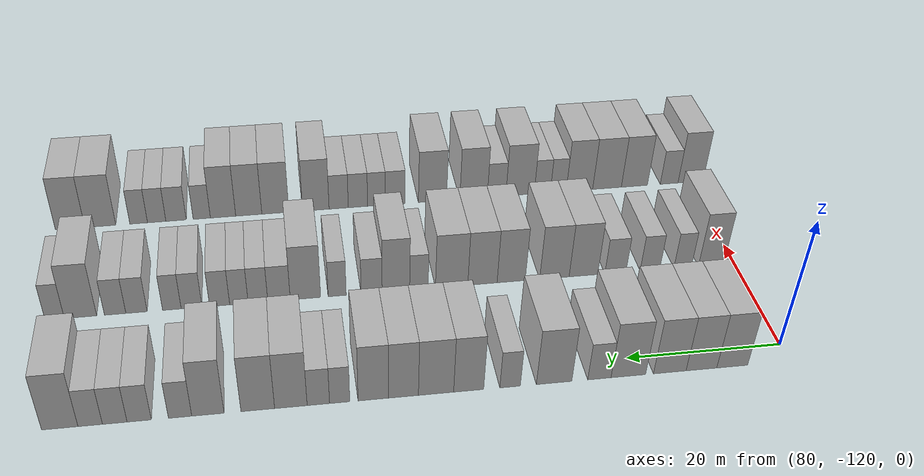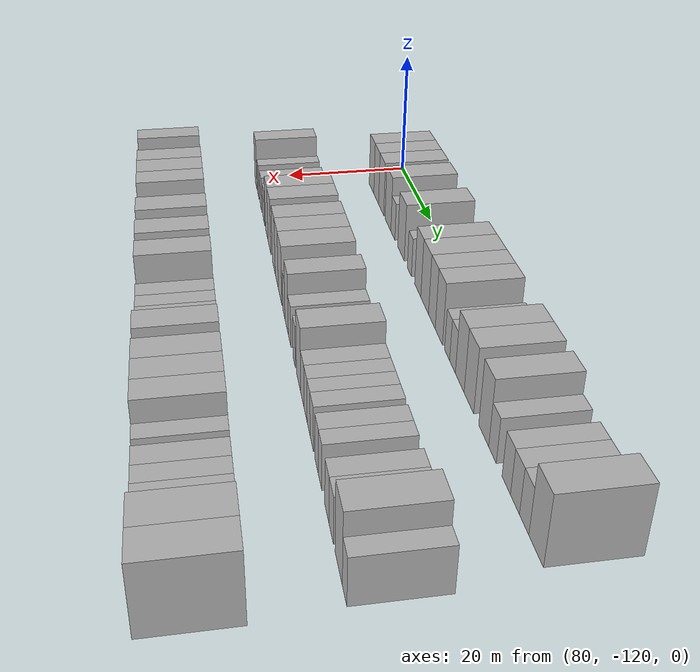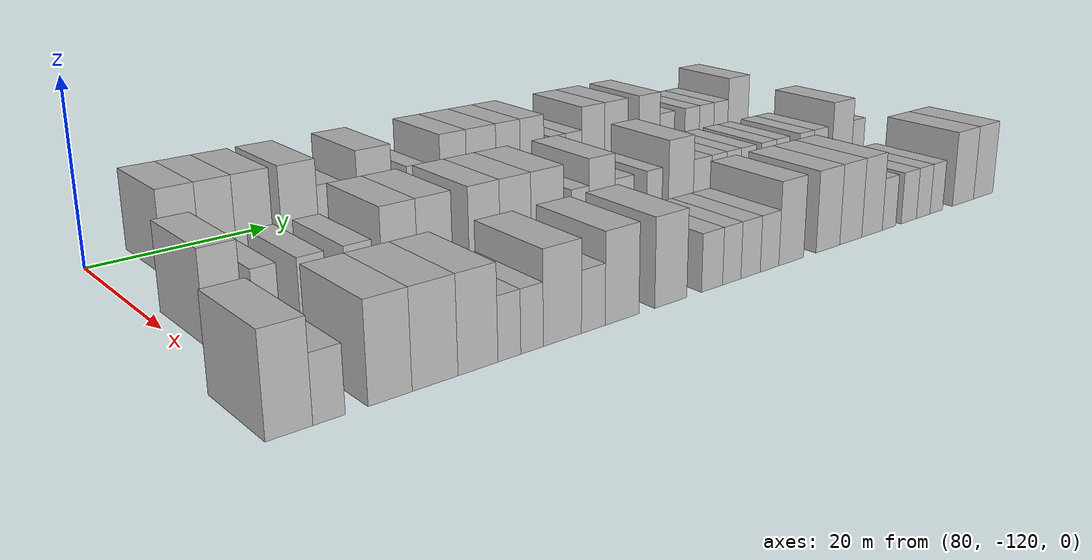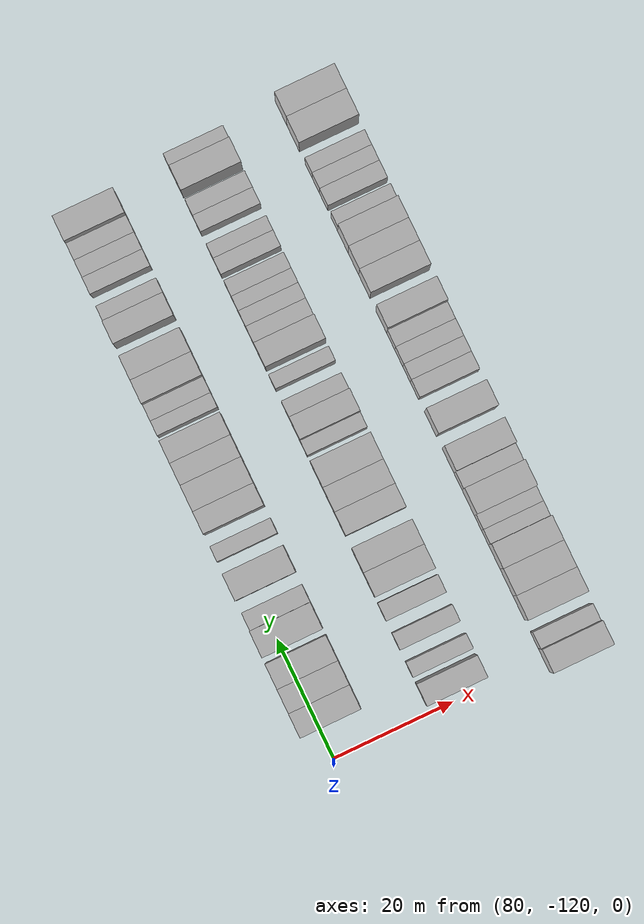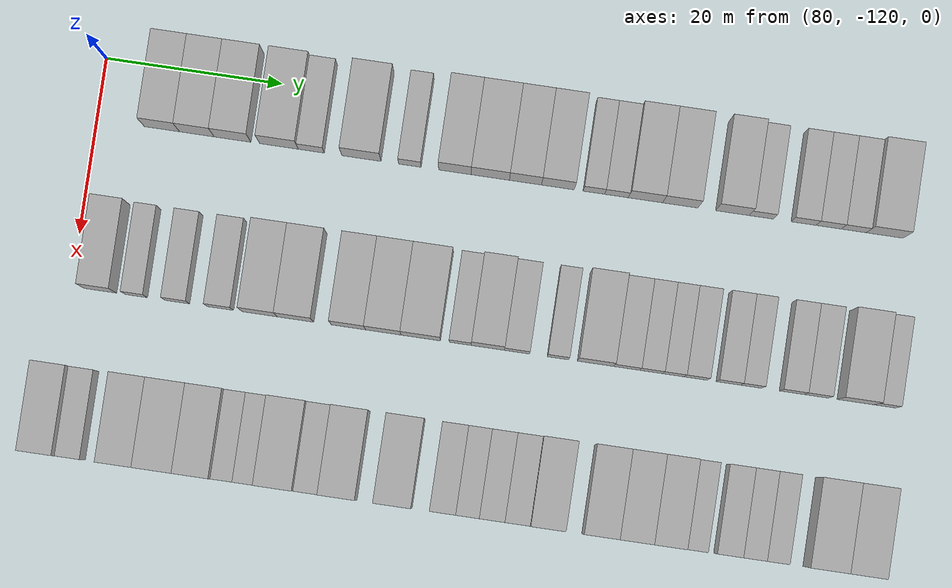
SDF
<sdf version="1.6">
 <world name="default">
  <model name="building_591">
   <static>1</static>
   <pose>82.0000 -112.6344 0 0.000000 0.000000 0.000000</pose>
   <link name="link">
    <pose>0 0 4.50 0 0 0</pose>
    <collision name="collision"><geometry><box><size>10.0000 3.9941 9.0000</size></box></geometry></collision>
    <visual name="visual">
     <cast_shadows>0</cast_shadows>
     <geometry><box><size>10.0000 3.9941 9.0000</size></box></geometry>
     <material>
      <script>
       <uri>model://HANNAS_wall/materials/scripts</uri>
       <uri>model://HANNAS_wall/materials/textures</uri>
       <name>vrc/HANNAS_wall</name>
      </script>
     </material>
    </visual>
   </link>
  </model>
  <model name="building_592">
   <static>1</static>
   <pose>82.0000 -108.6623 0 0.000000 0.000000 0.000000</pose>
   <link name="link">
    <pose>0 0 4.50 0 0 0</pose>
    <collision name="collision"><geometry><box><size>10.0000 3.9501 9.0000</size></box></geometry></collision>
    <visual name="visual">
     <cast_shadows>0</cast_shadows>
     <geometry><box><size>10.0000 3.9501 9.0000</size></box></geometry>
     <material>
      <script>
       <uri>model://HANNAS_wall/materials/scripts</uri>
       <uri>model://HANNAS_wall/materials/textures</uri>
       <name>vrc/HANNAS_wall</name>
      </script>
     </material>
    </visual>
   </link>
  </model>
  <model name="building_593">
   <static>1</static>
   <pose>82.0000 -104.6040 0 0.000000 0.000000 0.000000</pose>
   <link name="link">
    <pose>0 0 4.50 0 0 0</pose>
    <collision name="collision"><geometry><box><size>10.0000 4.1666 9.0000</size></box></geometry></collision>
    <visual name="visual">
     <cast_shadows>0</cast_shadows>
     <geometry><box><size>10.0000 4.1666 9.0000</size></box></geometry>
     <material>
      <script>
       <uri>model://HANNAS_wall/materials/scripts</uri>
       <uri>model://HANNAS_wall/materials/textures</uri>
       <name>vrc/HANNAS_wall</name>
      </script>
     </material>
    </visual>
   </link>
  </model>
  <model name="building_594">
   <static>1</static>
   <pose>82.0000 -99.3242 0 0.000000 0.000000 0.000000</pose>
   <link name="link">
    <pose>0 0 4.50 0 0 0</pose>
    <collision name="collision"><geometry><box><size>10.0000 4.3930 9.0000</size></box></geometry></collision>
    <visual name="visual">
     <cast_shadows>0</cast_shadows>
     <geometry><box><size>10.0000 4.3930 9.0000</size></box></geometry>
     <material>
      <script>
       <uri>model://HANNAS_wall/materials/scripts</uri>
       <uri>model://HANNAS_wall/materials/textures</uri>
       <name>vrc/HANNAS_wall</name>
      </script>
     </material>
    </visual>
   </link>
  </model>
  <model name="building_595">
   <static>1</static>
   <pose>82.0000 -95.6604 0 0.000000 0.000000 0.000000</pose>
   <link name="link">
    <pose>0 0 3.00 0 0 0</pose>
    <collision name="collision"><geometry><box><size>10.0000 2.9345 6.0000</size></box></geometry></collision>
    <visual name="visual">
     <cast_shadows>0</cast_shadows>
     <geometry><box><size>10.0000 2.9345 6.0000</size></box></geometry>
     <material>
      <script>
       <uri>model://HANNAS_wall/materials/scripts</uri>
       <uri>model://HANNAS_wall/materials/textures</uri>
       <name>vrc/HANNAS_wall</name>
      </script>
     </material>
    </visual>
   </link>
  </model>
  <model name="building_596">
   <static>1</static>
   <pose>82.0000 -89.9712 0 0.000000 0.000000 0.000000</pose>
   <link name="link">
    <pose>0 0 4.50 0 0 0</pose>
    <collision name="collision"><geometry><box><size>10.0000 4.4440 9.0000</size></box></geometry></collision>
    <visual name="visual">
     <cast_shadows>0</cast_shadows>
     <geometry><box><size>10.0000 4.4440 9.0000</size></box></geometry>
     <material>
      <script>
       <uri>model://HANNAS_wall/materials/scripts</uri>
       <uri>model://HANNAS_wall/materials/textures</uri>
       <name>vrc/HANNAS_wall</name>
      </script>
     </material>
    </visual>
   </link>
  </model>
  <model name="building_597">
   <static>1</static>
   <pose>82.0000 -84.4754 0 0.000000 0.000000 0.000000</pose>
   <link name="link">
    <pose>0 0 3.00 0 0 0</pose>
    <collision name="collision"><geometry><box><size>10.0000 2.5475 6.0000</size></box></geometry></collision>
    <visual name="visual">
     <cast_shadows>0</cast_shadows>
     <geometry><box><size>10.0000 2.5475 6.0000</size></box></geometry>
     <material>
      <script>
       <uri>model://HANNAS_wall/materials/scripts</uri>
       <uri>model://HANNAS_wall/materials/textures</uri>
       <name>vrc/HANNAS_wall</name>
      </script>
     </material>
    </visual>
   </link>
  </model>
  <model name="building_598">
   <static>1</static>
   <pose>82.0000 -79.3504 0 0.000000 0.000000 0.000000</pose>
   <link name="link">
    <pose>0 0 4.50 0 0 0</pose>
    <collision name="collision"><geometry><box><size>10.0000 3.7024 9.0000</size></box></geometry></collision>
    <visual name="visual">
     <cast_shadows>0</cast_shadows>
     <geometry><box><size>10.0000 3.7024 9.0000</size></box></geometry>
     <material>
      <script>
       <uri>model://HANNAS_wall/materials/scripts</uri>
       <uri>model://HANNAS_wall/materials/textures</uri>
       <name>vrc/HANNAS_wall</name>
      </script>
     </material>
    </visual>
   </link>
  </model>
  <model name="building_599">
   <static>1</static>
   <pose>82.0000 -75.3377 0 0.000000 0.000000 0.000000</pose>
   <link name="link">
    <pose>0 0 4.50 0 0 0</pose>
    <collision name="collision"><geometry><box><size>10.0000 4.3231 9.0000</size></box></geometry></collision>
    <visual name="visual">
     <cast_shadows>0</cast_shadows>
     <geometry><box><size>10.0000 4.3231 9.0000</size></box></geometry>
     <material>
      <script>
       <uri>model://HANNAS_wall/materials/scripts</uri>
       <uri>model://HANNAS_wall/materials/textures</uri>
       <name>vrc/HANNAS_wall</name>
      </script>
     </material>
    </visual>
   </link>
  </model>
  <model name="building_600">
   <static>1</static>
   <pose>82.0000 -71.3604 0 0.000000 0.000000 0.000000</pose>
   <link name="link">
    <pose>0 0 4.50 0 0 0</pose>
    <collision name="collision"><geometry><box><size>10.0000 3.6313 9.0000</size></box></geometry></collision>
    <visual name="visual">
     <cast_shadows>0</cast_shadows>
     <geometry><box><size>10.0000 3.6313 9.0000</size></box></geometry>
     <material>
      <script>
       <uri>model://HANNAS_wall/materials/scripts</uri>
       <uri>model://HANNAS_wall/materials/textures</uri>
       <name>vrc/HANNAS_wall</name>
      </script>
     </material>
    </visual>
   </link>
  </model>
  <model name="building_601">
   <static>1</static>
   <pose>82.0000 -67.6889 0 0.000000 0.000000 0.000000</pose>
   <link name="link">
    <pose>0 0 4.50 0 0 0</pose>
    <collision name="collision"><geometry><box><size>10.0000 3.7117 9.0000</size></box></geometry></collision>
    <visual name="visual">
     <cast_shadows>0</cast_shadows>
     <geometry><box><size>10.0000 3.7117 9.0000</size></box></geometry>
     <material>
      <script>
       <uri>model://HANNAS_wall/materials/scripts</uri>
       <uri>model://HANNAS_wall/materials/textures</uri>
       <name>vrc/HANNAS_wall</name>
      </script>
     </material>
    </visual>
   </link>
  </model>
  <model name="building_602">
   <static>1</static>
   <pose>82.0000 -63.6127 0 0.000000 0.000000 0.000000</pose>
   <link name="link">
    <pose>0 0 3.00 0 0 0</pose>
    <collision name="collision"><geometry><box><size>10.0000 2.4409 6.0000</size></box></geometry></collision>
    <visual name="visual">
     <cast_shadows>0</cast_shadows>
     <geometry><box><size>10.0000 2.4409 6.0000</size></box></geometry>
     <material>
      <script>
       <uri>model://HANNAS_wall/materials/scripts</uri>
       <uri>model://HANNAS_wall/materials/textures</uri>
       <name>vrc/HANNAS_wall</name>
      </script>
     </material>
    </visual>
   </link>
  </model>
  <model name="building_603">
   <static>1</static>
   <pose>82.0000 -61.0438 0 0.000000 0.000000 0.000000</pose>
   <link name="link">
    <pose>0 0 3.00 0 0 0</pose>
    <collision name="collision"><geometry><box><size>10.0000 2.6968 6.0000</size></box></geometry></collision>
    <visual name="visual">
     <cast_shadows>0</cast_shadows>
     <geometry><box><size>10.0000 2.6968 6.0000</size></box></geometry>
     <material>
      <script>
       <uri>model://HANNAS_wall/materials/scripts</uri>
       <uri>model://HANNAS_wall/materials/textures</uri>
       <name>vrc/HANNAS_wall</name>
      </script>
     </material>
    </visual>
   </link>
  </model>
  <model name="building_604">
   <static>1</static>
   <pose>82.0000 -57.7512 0 0.000000 0.000000 0.000000</pose>
   <link name="link">
    <pose>0 0 4.50 0 0 0</pose>
    <collision name="collision"><geometry><box><size>10.0000 3.8884 9.0000</size></box></geometry></collision>
    <visual name="visual">
     <cast_shadows>0</cast_shadows>
     <geometry><box><size>10.0000 3.8884 9.0000</size></box></geometry>
     <material>
      <script>
       <uri>model://HANNAS_wall/materials/scripts</uri>
       <uri>model://HANNAS_wall/materials/textures</uri>
       <name>vrc/HANNAS_wall</name>
      </script>
     </material>
    </visual>
   </link>
  </model>
  <model name="building_605">
   <static>1</static>
   <pose>82.0000 -53.8021 0 0.000000 0.000000 0.000000</pose>
   <link name="link">
    <pose>0 0 4.50 0 0 0</pose>
    <collision name="collision"><geometry><box><size>10.0000 4.0098 9.0000</size></box></geometry></collision>
    <visual name="visual">
     <cast_shadows>0</cast_shadows>
     <geometry><box><size>10.0000 4.0098 9.0000</size></box></geometry>
     <material>
      <script>
       <uri>model://HANNAS_wall/materials/scripts</uri>
       <uri>model://HANNAS_wall/materials/textures</uri>
       <name>vrc/HANNAS_wall</name>
      </script>
     </material>
    </visual>
   </link>
  </model>
  <model name="building_606">
   <static>1</static>
   <pose>82.0000 -47.8927 0 0.000000 0.000000 0.000000</pose>
   <link name="link">
    <pose>0 0 4.50 0 0 0</pose>
    <collision name="collision"><geometry><box><size>10.0000 3.8091 9.0000</size></box></geometry></collision>
    <visual name="visual">
     <cast_shadows>0</cast_shadows>
     <geometry><box><size>10.0000 3.8091 9.0000</size></box></geometry>
     <material>
      <script>
       <uri>model://HANNAS_wall/materials/scripts</uri>
       <uri>model://HANNAS_wall/materials/textures</uri>
       <name>vrc/HANNAS_wall</name>
      </script>
     </material>
    </visual>
   </link>
  </model>
  <model name="building_607">
   <static>1</static>
   <pose>82.0000 -44.6165 0 0.000000 0.000000 0.000000</pose>
   <link name="link">
    <pose>0 0 3.00 0 0 0</pose>
    <collision name="collision"><geometry><box><size>10.0000 2.7433 6.0000</size></box></geometry></collision>
    <visual name="visual">
     <cast_shadows>0</cast_shadows>
     <geometry><box><size>10.0000 2.7433 6.0000</size></box></geometry>
     <material>
      <script>
       <uri>model://HANNAS_wall/materials/scripts</uri>
       <uri>model://HANNAS_wall/materials/textures</uri>
       <name>vrc/HANNAS_wall</name>
      </script>
     </material>
    </visual>
   </link>
  </model>
  <model name="building_608">
   <static>1</static>
   <pose>82.0000 -39.8314 0 0.000000 0.000000 0.000000</pose>
   <link name="link">
    <pose>0 0 3.00 0 0 0</pose>
    <collision name="collision"><geometry><box><size>10.0000 2.8268 6.0000</size></box></geometry></collision>
    <visual name="visual">
     <cast_shadows>0</cast_shadows>
     <geometry><box><size>10.0000 2.8268 6.0000</size></box></geometry>
     <material>
      <script>
       <uri>model://HANNAS_wall/materials/scripts</uri>
       <uri>model://HANNAS_wall/materials/textures</uri>
       <name>vrc/HANNAS_wall</name>
      </script>
     </material>
    </visual>
   </link>
  </model>
  <model name="building_609">
   <static>1</static>
   <pose>82.0000 -36.9887 0 0.000000 0.000000 0.000000</pose>
   <link name="link">
    <pose>0 0 3.00 0 0 0</pose>
    <collision name="collision"><geometry><box><size>10.0000 2.8586 6.0000</size></box></geometry></collision>
    <visual name="visual">
     <cast_shadows>0</cast_shadows>
     <geometry><box><size>10.0000 2.8586 6.0000</size></box></geometry>
     <material>
      <script>
       <uri>model://HANNAS_wall/materials/scripts</uri>
       <uri>model://HANNAS_wall/materials/textures</uri>
       <name>vrc/HANNAS_wall</name>
      </script>
     </material>
    </visual>
   </link>
  </model>
  <model name="building_610">
   <static>1</static>
   <pose>82.0000 -34.1430 0 0.000000 0.000000 0.000000</pose>
   <link name="link">
    <pose>0 0 3.00 0 0 0</pose>
    <collision name="collision"><geometry><box><size>10.0000 2.8327 6.0000</size></box></geometry></collision>
    <visual name="visual">
     <cast_shadows>0</cast_shadows>
     <geometry><box><size>10.0000 2.8327 6.0000</size></box></geometry>
     <material>
      <script>
       <uri>model://HANNAS_wall/materials/scripts</uri>
       <uri>model://HANNAS_wall/materials/textures</uri>
       <name>vrc/HANNAS_wall</name>
      </script>
     </material>
    </visual>
   </link>
  </model>
  <model name="building_611">
   <static>1</static>
   <pose>82.0000 -30.6301 0 0.000000 0.000000 0.000000</pose>
   <link name="link">
    <pose>0 0 4.50 0 0 0</pose>
    <collision name="collision"><geometry><box><size>10.0000 4.1931 9.0000</size></box></geometry></collision>
    <visual name="visual">
     <cast_shadows>0</cast_shadows>
     <geometry><box><size>10.0000 4.1931 9.0000</size></box></geometry>
     <material>
      <script>
       <uri>model://HANNAS_wall/materials/scripts</uri>
       <uri>model://HANNAS_wall/materials/textures</uri>
       <name>vrc/HANNAS_wall</name>
      </script>
     </material>
    </visual>
   </link>
  </model>
  <model name="building_768">
   <static>1</static>
   <pose>101.0000 -116.6891 0 0.000000 0.000000 0.000000</pose>
   <link name="link">
    <pose>0 0 4.50 0 0 0</pose>
    <collision name="collision"><geometry><box><size>10.0000 3.6314 9.0000</size></box></geometry></collision>
    <visual name="visual">
     <cast_shadows>0</cast_shadows>
     <geometry><box><size>10.0000 3.6314 9.0000</size></box></geometry>
     <material>
      <script>
       <uri>model://HANNAS_wall/materials/scripts</uri>
       <uri>model://HANNAS_wall/materials/textures</uri>
       <name>vrc/HANNAS_wall</name>
      </script>
     </material>
    </visual>
   </link>
  </model>
  <model name="building_769">
   <static>1</static>
   <pose>101.0000 -112.6249 0 0.000000 0.000000 0.000000</pose>
   <link name="link">
    <pose>0 0 3.00 0 0 0</pose>
    <collision name="collision"><geometry><box><size>10.0000 2.4971 6.0000</size></box></geometry></collision>
    <visual name="visual">
     <cast_shadows>0</cast_shadows>
     <geometry><box><size>10.0000 2.4971 6.0000</size></box></geometry>
     <material>
      <script>
       <uri>model://HANNAS_wall/materials/scripts</uri>
       <uri>model://HANNAS_wall/materials/textures</uri>
       <name>vrc/HANNAS_wall</name>
      </script>
     </material>
    </visual>
   </link>
  </model>
  <model name="building_770">
   <static>1</static>
   <pose>101.0000 -107.9869 0 0.000000 0.000000 0.000000</pose>
   <link name="link">
    <pose>0 0 3.00 0 0 0</pose>
    <collision name="collision"><geometry><box><size>10.0000 2.7790 6.0000</size></box></geometry></collision>
    <visual name="visual">
     <cast_shadows>0</cast_shadows>
     <geometry><box><size>10.0000 2.7790 6.0000</size></box></geometry>
     <material>
      <script>
       <uri>model://HANNAS_wall/materials/scripts</uri>
       <uri>model://HANNAS_wall/materials/textures</uri>
       <name>vrc/HANNAS_wall</name>
      </script>
     </material>
    </visual>
   </link>
  </model>
  <model name="building_771">
   <static>1</static>
   <pose>101.0000 -103.1115 0 0.000000 0.000000 0.000000</pose>
   <link name="link">
    <pose>0 0 3.00 0 0 0</pose>
    <collision name="collision"><geometry><box><size>10.0000 2.9717 6.0000</size></box></geometry></collision>
    <visual name="visual">
     <cast_shadows>0</cast_shadows>
     <geometry><box><size>10.0000 2.9717 6.0000</size></box></geometry>
     <material>
      <script>
       <uri>model://HANNAS_wall/materials/scripts</uri>
       <uri>model://HANNAS_wall/materials/textures</uri>
       <name>vrc/HANNAS_wall</name>
      </script>
     </material>
    </visual>
   </link>
  </model>
  <model name="building_772">
   <static>1</static>
   <pose>101.0000 -98.6265 0 0.000000 0.000000 0.000000</pose>
   <link name="link">
    <pose>0 0 4.50 0 0 0</pose>
    <collision name="collision"><geometry><box><size>10.0000 3.9984 9.0000</size></box></geometry></collision>
    <visual name="visual">
     <cast_shadows>0</cast_shadows>
     <geometry><box><size>10.0000 3.9984 9.0000</size></box></geometry>
     <material>
      <script>
       <uri>model://HANNAS_wall/materials/scripts</uri>
       <uri>model://HANNAS_wall/materials/textures</uri>
       <name>vrc/HANNAS_wall</name>
      </script>
     </material>
    </visual>
   </link>
  </model>
  <model name="building_773">
   <static>1</static>
   <pose>101.0000 -94.5780 0 0.000000 0.000000 0.000000</pose>
   <link name="link">
    <pose>0 0 4.50 0 0 0</pose>
    <collision name="collision"><geometry><box><size>10.0000 4.0985 9.0000</size></box></geometry></collision>
    <visual name="visual">
     <cast_shadows>0</cast_shadows>
     <geometry><box><size>10.0000 4.0985 9.0000</size></box></geometry>
     <material>
      <script>
       <uri>model://HANNAS_wall/materials/scripts</uri>
       <uri>model://HANNAS_wall/materials/textures</uri>
       <name>vrc/HANNAS_wall</name>
      </script>
     </material>
    </visual>
   </link>
  </model>
  <model name="building_774">
   <static>1</static>
   <pose>101.0000 -88.5860 0 0.000000 0.000000 0.000000</pose>
   <link name="link">
    <pose>0 0 4.50 0 0 0</pose>
    <collision name="collision"><geometry><box><size>10.0000 3.8856 9.0000</size></box></geometry></collision>
    <visual name="visual">
     <cast_shadows>0</cast_shadows>
     <geometry><box><size>10.0000 3.8856 9.0000</size></box></geometry>
     <material>
      <script>
       <uri>model://HANNAS_wall/materials/scripts</uri>
       <uri>model://HANNAS_wall/materials/textures</uri>
       <name>vrc/HANNAS_wall</name>
      </script>
     </material>
    </visual>
   </link>
  </model>
  <model name="building_775">
   <static>1</static>
   <pose>101.0000 -84.6299 0 0.000000 0.000000 0.000000</pose>
   <link name="link">
    <pose>0 0 4.50 0 0 0</pose>
    <collision name="collision"><geometry><box><size>10.0000 4.0265 9.0000</size></box></geometry></collision>
    <visual name="visual">
     <cast_shadows>0</cast_shadows>
     <geometry><box><size>10.0000 4.0265 9.0000</size></box></geometry>
     <material>
      <script>
       <uri>model://HANNAS_wall/materials/scripts</uri>
       <uri>model://HANNAS_wall/materials/textures</uri>
       <name>vrc/HANNAS_wall</name>
      </script>
     </material>
    </visual>
   </link>
  </model>
  <model name="building_776">
   <static>1</static>
   <pose>101.0000 -80.4047 0 0.000000 0.000000 0.000000</pose>
   <link name="link">
    <pose>0 0 4.50 0 0 0</pose>
    <collision name="collision"><geometry><box><size>10.0000 4.4237 9.0000</size></box></geometry></collision>
    <visual name="visual">
     <cast_shadows>0</cast_shadows>
     <geometry><box><size>10.0000 4.4237 9.0000</size></box></geometry>
     <material>
      <script>
       <uri>model://HANNAS_wall/materials/scripts</uri>
       <uri>model://HANNAS_wall/materials/textures</uri>
       <name>vrc/HANNAS_wall</name>
      </script>
     </material>
    </visual>
   </link>
  </model>
  <model name="building_777">
   <static>1</static>
   <pose>101.0000 -75.9399 0 0.000000 0.000000 0.000000</pose>
   <link name="link">
    <pose>0 0 3.00 0 0 0</pose>
    <collision name="collision"><geometry><box><size>10.0000 2.5059 6.0000</size></box></geometry></collision>
    <visual name="visual">
     <cast_shadows>0</cast_shadows>
     <geometry><box><size>10.0000 2.5059 6.0000</size></box></geometry>
     <material>
      <script>
       <uri>model://HANNAS_wall/materials/scripts</uri>
       <uri>model://HANNAS_wall/materials/textures</uri>
       <name>vrc/HANNAS_wall</name>
      </script>
     </material>
    </visual>
   </link>
  </model>
  <model name="building_778">
   <static>1</static>
   <pose>101.0000 -72.8253 0 0.000000 0.000000 0.000000</pose>
   <link name="link">
    <pose>0 0 4.50 0 0 0</pose>
    <collision name="collision"><geometry><box><size>10.0000 3.7233 9.0000</size></box></geometry></collision>
    <visual name="visual">
     <cast_shadows>0</cast_shadows>
     <geometry><box><size>10.0000 3.7233 9.0000</size></box></geometry>
     <material>
      <script>
       <uri>model://HANNAS_wall/materials/scripts</uri>
       <uri>model://HANNAS_wall/materials/textures</uri>
       <name>vrc/HANNAS_wall</name>
      </script>
     </material>
    </visual>
   </link>
  </model>
  <model name="building_779">
   <static>1</static>
   <pose>101.0000 -69.5464 0 0.000000 0.000000 0.000000</pose>
   <link name="link">
    <pose>0 0 3.00 0 0 0</pose>
    <collision name="collision"><geometry><box><size>10.0000 2.8346 6.0000</size></box></geometry></collision>
    <visual name="visual">
     <cast_shadows>0</cast_shadows>
     <geometry><box><size>10.0000 2.8346 6.0000</size></box></geometry>
     <material>
      <script>
       <uri>model://HANNAS_wall/materials/scripts</uri>
       <uri>model://HANNAS_wall/materials/textures</uri>
       <name>vrc/HANNAS_wall</name>
      </script>
     </material>
    </visual>
   </link>
  </model>
  <model name="building_780">
   <static>1</static>
   <pose>101.0000 -64.9202 0 0.000000 0.000000 0.000000</pose>
   <link name="link">
    <pose>0 0 3.00 0 0 0</pose>
    <collision name="collision"><geometry><box><size>10.0000 2.4177 6.0000</size></box></geometry></collision>
    <visual name="visual">
     <cast_shadows>0</cast_shadows>
     <geometry><box><size>10.0000 2.4177 6.0000</size></box></geometry>
     <material>
      <script>
       <uri>model://HANNAS_wall/materials/scripts</uri>
       <uri>model://HANNAS_wall/materials/textures</uri>
       <name>vrc/HANNAS_wall</name>
      </script>
     </material>
    </visual>
   </link>
  </model>
  <model name="building_781">
   <static>1</static>
   <pose>101.0000 -60.6857 0 0.000000 0.000000 0.000000</pose>
   <link name="link">
    <pose>0 0 4.50 0 0 0</pose>
    <collision name="collision"><geometry><box><size>10.0000 4.0514 9.0000</size></box></geometry></collision>
    <visual name="visual">
     <cast_shadows>0</cast_shadows>
     <geometry><box><size>10.0000 4.0514 9.0000</size></box></geometry>
     <material>
      <script>
       <uri>model://HANNAS_wall/materials/scripts</uri>
       <uri>model://HANNAS_wall/materials/textures</uri>
       <name>vrc/HANNAS_wall</name>
      </script>
     </material>
    </visual>
   </link>
  </model>
  <model name="building_782">
   <static>1</static>
   <pose>101.0000 -57.1712 0 0.000000 0.000000 0.000000</pose>
   <link name="link">
    <pose>0 0 3.00 0 0 0</pose>
    <collision name="collision"><geometry><box><size>10.0000 2.9776 6.0000</size></box></geometry></collision>
    <visual name="visual">
     <cast_shadows>0</cast_shadows>
     <geometry><box><size>10.0000 2.9776 6.0000</size></box></geometry>
     <material>
      <script>
       <uri>model://HANNAS_wall/materials/scripts</uri>
       <uri>model://HANNAS_wall/materials/textures</uri>
       <name>vrc/HANNAS_wall</name>
      </script>
     </material>
    </visual>
   </link>
  </model>
  <model name="building_783">
   <static>1</static>
   <pose>101.0000 -54.3871 0 0.000000 0.000000 0.000000</pose>
   <link name="link">
    <pose>0 0 3.00 0 0 0</pose>
    <collision name="collision"><geometry><box><size>10.0000 2.5906 6.0000</size></box></geometry></collision>
    <visual name="visual">
     <cast_shadows>0</cast_shadows>
     <geometry><box><size>10.0000 2.5906 6.0000</size></box></geometry>
     <material>
      <script>
       <uri>model://HANNAS_wall/materials/scripts</uri>
       <uri>model://HANNAS_wall/materials/textures</uri>
       <name>vrc/HANNAS_wall</name>
      </script>
     </material>
    </visual>
   </link>
  </model>
  <model name="building_784">
   <static>1</static>
   <pose>101.0000 -51.8714 0 0.000000 0.000000 0.000000</pose>
   <link name="link">
    <pose>0 0 3.00 0 0 0</pose>
    <collision name="collision"><geometry><box><size>10.0000 2.4406 6.0000</size></box></geometry></collision>
    <visual name="visual">
     <cast_shadows>0</cast_shadows>
     <geometry><box><size>10.0000 2.4406 6.0000</size></box></geometry>
     <material>
      <script>
       <uri>model://HANNAS_wall/materials/scripts</uri>
       <uri>model://HANNAS_wall/materials/textures</uri>
       <name>vrc/HANNAS_wall</name>
      </script>
     </material>
    </visual>
   </link>
  </model>
  <model name="building_785">
   <static>1</static>
   <pose>101.0000 -49.3332 0 0.000000 0.000000 0.000000</pose>
   <link name="link">
    <pose>0 0 3.00 0 0 0</pose>
    <collision name="collision"><geometry><box><size>10.0000 2.6359 6.0000</size></box></geometry></collision>
    <visual name="visual">
     <cast_shadows>0</cast_shadows>
     <geometry><box><size>10.0000 2.6359 6.0000</size></box></geometry>
     <material>
      <script>
       <uri>model://HANNAS_wall/materials/scripts</uri>
       <uri>model://HANNAS_wall/materials/textures</uri>
       <name>vrc/HANNAS_wall</name>
      </script>
     </material>
    </visual>
   </link>
  </model>
  <model name="building_786">
   <static>1</static>
   <pose>101.0000 -45.6547 0 0.000000 0.000000 0.000000</pose>
   <link name="link">
    <pose>0 0 3.00 0 0 0</pose>
    <collision name="collision"><geometry><box><size>10.0000 2.7209 6.0000</size></box></geometry></collision>
    <visual name="visual">
     <cast_shadows>0</cast_shadows>
     <geometry><box><size>10.0000 2.7209 6.0000</size></box></geometry>
     <material>
      <script>
       <uri>model://HANNAS_wall/materials/scripts</uri>
       <uri>model://HANNAS_wall/materials/textures</uri>
       <name>vrc/HANNAS_wall</name>
      </script>
     </material>
    </visual>
   </link>
  </model>
  <model name="building_787">
   <static>1</static>
   <pose>101.0000 -43.0825 0 0.000000 0.000000 0.000000</pose>
   <link name="link">
    <pose>0 0 3.00 0 0 0</pose>
    <collision name="collision"><geometry><box><size>10.0000 2.4235 6.0000</size></box></geometry></collision>
    <visual name="visual">
     <cast_shadows>0</cast_shadows>
     <geometry><box><size>10.0000 2.4235 6.0000</size></box></geometry>
     <material>
      <script>
       <uri>model://HANNAS_wall/materials/scripts</uri>
       <uri>model://HANNAS_wall/materials/textures</uri>
       <name>vrc/HANNAS_wall</name>
      </script>
     </material>
    </visual>
   </link>
  </model>
  <model name="building_788">
   <static>1</static>
   <pose>101.0000 -38.4903 0 0.000000 0.000000 0.000000</pose>
   <link name="link">
    <pose>0 0 3.00 0 0 0</pose>
    <collision name="collision"><geometry><box><size>10.0000 2.7611 6.0000</size></box></geometry></collision>
    <visual name="visual">
     <cast_shadows>0</cast_shadows>
     <geometry><box><size>10.0000 2.7611 6.0000</size></box></geometry>
     <material>
      <script>
       <uri>model://HANNAS_wall/materials/scripts</uri>
       <uri>model://HANNAS_wall/materials/textures</uri>
       <name>vrc/HANNAS_wall</name>
      </script>
     </material>
    </visual>
   </link>
  </model>
  <model name="building_789">
   <static>1</static>
   <pose>101.0000 -35.7264 0 0.000000 0.000000 0.000000</pose>
   <link name="link">
    <pose>0 0 3.00 0 0 0</pose>
    <collision name="collision"><geometry><box><size>10.0000 2.7666 6.0000</size></box></geometry></collision>
    <visual name="visual">
     <cast_shadows>0</cast_shadows>
     <geometry><box><size>10.0000 2.7666 6.0000</size></box></geometry>
     <material>
      <script>
       <uri>model://HANNAS_wall/materials/scripts</uri>
       <uri>model://HANNAS_wall/materials/textures</uri>
       <name>vrc/HANNAS_wall</name>
      </script>
     </material>
    </visual>
   </link>
  </model>
  <model name="building_790">
   <static>1</static>
   <pose>101.0000 -31.2641 0 0.000000 0.000000 0.000000</pose>
   <link name="link">
    <pose>0 0 4.50 0 0 0</pose>
    <collision name="collision"><geometry><box><size>10.0000 4.1580 9.0000</size></box></geometry></collision>
    <visual name="visual">
     <cast_shadows>0</cast_shadows>
     <geometry><box><size>10.0000 4.1580 9.0000</size></box></geometry>
     <material>
      <script>
       <uri>model://HANNAS_wall/materials/scripts</uri>
       <uri>model://HANNAS_wall/materials/textures</uri>
       <name>vrc/HANNAS_wall</name>
      </script>
     </material>
    </visual>
   </link>
  </model>
  <model name="building_791">
   <static>1</static>
   <pose>101.0000 -27.9543 0 0.000000 0.000000 0.000000</pose>
   <link name="link">
    <pose>0 0 3.00 0 0 0</pose>
    <collision name="collision"><geometry><box><size>10.0000 2.4617 6.0000</size></box></geometry></collision>
    <visual name="visual">
     <cast_shadows>0</cast_shadows>
     <geometry><box><size>10.0000 2.4617 6.0000</size></box></geometry>
     <material>
      <script>
       <uri>model://HANNAS_wall/materials/scripts</uri>
       <uri>model://HANNAS_wall/materials/textures</uri>
       <name>vrc/HANNAS_wall</name>
      </script>
     </material>
    </visual>
   </link>
  </model>
  <model name="building_937">
   <static>1</static>
   <pose>120.0000 -120.2361 0 0.000000 0.000000 0.000000</pose>
   <link name="link">
    <pose>0 0 4.50 0 0 0</pose>
    <collision name="collision"><geometry><box><size>10.0000 3.9158 9.0000</size></box></geometry></collision>
    <visual name="visual">
     <cast_shadows>0</cast_shadows>
     <geometry><box><size>10.0000 3.9158 9.0000</size></box></geometry>
     <material>
      <script>
       <uri>model://HANNAS_wall/materials/scripts</uri>
       <uri>model://HANNAS_wall/materials/textures</uri>
       <name>vrc/HANNAS_wall</name>
      </script>
     </material>
    </visual>
   </link>
  </model>
  <model name="building_938">
   <static>1</static>
   <pose>120.0000 -116.8934 0 0.000000 0.000000 0.000000</pose>
   <link name="link">
    <pose>0 0 3.00 0 0 0</pose>
    <collision name="collision"><geometry><box><size>10.0000 2.7696 6.0000</size></box></geometry></collision>
    <visual name="visual">
     <cast_shadows>0</cast_shadows>
     <geometry><box><size>10.0000 2.7696 6.0000</size></box></geometry>
     <material>
      <script>
       <uri>model://HANNAS_wall/materials/scripts</uri>
       <uri>model://HANNAS_wall/materials/textures</uri>
       <name>vrc/HANNAS_wall</name>
      </script>
     </material>
    </visual>
   </link>
  </model>
  <model name="building_939">
   <static>1</static>
   <pose>120.0000 -111.4837 0 0.000000 0.000000 0.000000</pose>
   <link name="link">
    <pose>0 0 4.50 0 0 0</pose>
    <collision name="collision"><geometry><box><size>10.0000 4.0499 9.0000</size></box></geometry></collision>
    <visual name="visual">
     <cast_shadows>0</cast_shadows>
     <geometry><box><size>10.0000 4.0499 9.0000</size></box></geometry>
     <material>
      <script>
       <uri>model://HANNAS_wall/materials/scripts</uri>
       <uri>model://HANNAS_wall/materials/textures</uri>
       <name>vrc/HANNAS_wall</name>
      </script>
     </material>
    </visual>
   </link>
  </model>
  <model name="building_940">
   <static>1</static>
   <pose>120.0000 -107.2425 0 0.000000 0.000000 0.000000</pose>
   <link name="link">
    <pose>0 0 4.50 0 0 0</pose>
    <collision name="collision"><geometry><box><size>10.0000 4.4325 9.0000</size></box></geometry></collision>
    <visual name="visual">
     <cast_shadows>0</cast_shadows>
     <geometry><box><size>10.0000 4.4325 9.0000</size></box></geometry>
     <material>
      <script>
       <uri>model://HANNAS_wall/materials/scripts</uri>
       <uri>model://HANNAS_wall/materials/textures</uri>
       <name>vrc/HANNAS_wall</name>
      </script>
     </material>
    </visual>
   </link>
  </model>
  <model name="building_941">
   <static>1</static>
   <pose>120.0000 -102.9893 0 0.000000 0.000000 0.000000</pose>
   <link name="link">
    <pose>0 0 4.50 0 0 0</pose>
    <collision name="collision"><geometry><box><size>10.0000 4.0739 9.0000</size></box></geometry></collision>
    <visual name="visual">
     <cast_shadows>0</cast_shadows>
     <geometry><box><size>10.0000 4.0739 9.0000</size></box></geometry>
     <material>
      <script>
       <uri>model://HANNAS_wall/materials/scripts</uri>
       <uri>model://HANNAS_wall/materials/textures</uri>
       <name>vrc/HANNAS_wall</name>
      </script>
     </material>
    </visual>
   </link>
  </model>
  <model name="building_942">
   <static>1</static>
   <pose>120.0000 -99.7384 0 0.000000 0.000000 0.000000</pose>
   <link name="link">
    <pose>0 0 3.00 0 0 0</pose>
    <collision name="collision"><geometry><box><size>10.0000 2.4279 6.0000</size></box></geometry></collision>
    <visual name="visual">
     <cast_shadows>0</cast_shadows>
     <geometry><box><size>10.0000 2.4279 6.0000</size></box></geometry>
     <material>
      <script>
       <uri>model://HANNAS_wall/materials/scripts</uri>
       <uri>model://HANNAS_wall/materials/textures</uri>
       <name>vrc/HANNAS_wall</name>
      </script>
     </material>
    </visual>
   </link>
  </model>
  <model name="building_943">
   <static>1</static>
   <pose>120.0000 -97.2946 0 0.000000 0.000000 0.000000</pose>
   <link name="link">
    <pose>0 0 3.00 0 0 0</pose>
    <collision name="collision"><geometry><box><size>10.0000 2.4597 6.0000</size></box></geometry></collision>
    <visual name="visual">
     <cast_shadows>0</cast_shadows>
     <geometry><box><size>10.0000 2.4597 6.0000</size></box></geometry>
     <material>
      <script>
       <uri>model://HANNAS_wall/materials/scripts</uri>
       <uri>model://HANNAS_wall/materials/textures</uri>
       <name>vrc/HANNAS_wall</name>
      </script>
     </material>
    </visual>
   </link>
  </model>
  <model name="building_944">
   <static>1</static>
   <pose>120.0000 -93.9075 0 0.000000 0.000000 0.000000</pose>
   <link name="link">
    <pose>0 0 4.50 0 0 0</pose>
    <collision name="collision"><geometry><box><size>10.0000 4.3145 9.0000</size></box></geometry></collision>
    <visual name="visual">
     <cast_shadows>0</cast_shadows>
     <geometry><box><size>10.0000 4.3145 9.0000</size></box></geometry>
     <material>
      <script>
       <uri>model://HANNAS_wall/materials/scripts</uri>
       <uri>model://HANNAS_wall/materials/textures</uri>
       <name>vrc/HANNAS_wall</name>
      </script>
     </material>
    </visual>
   </link>
  </model>
  <model name="building_945">
   <static>1</static>
   <pose>120.0000 -90.3464 0 0.000000 0.000000 0.000000</pose>
   <link name="link">
    <pose>0 0 3.00 0 0 0</pose>
    <collision name="collision"><geometry><box><size>10.0000 2.8077 6.0000</size></box></geometry></collision>
    <visual name="visual">
     <cast_shadows>0</cast_shadows>
     <geometry><box><size>10.0000 2.8077 6.0000</size></box></geometry>
     <material>
      <script>
       <uri>model://HANNAS_wall/materials/scripts</uri>
       <uri>model://HANNAS_wall/materials/textures</uri>
       <name>vrc/HANNAS_wall</name>
      </script>
     </material>
    </visual>
   </link>
  </model>
  <model name="building_946">
   <static>1</static>
   <pose>120.0000 -86.8706 0 0.000000 0.000000 0.000000</pose>
   <link name="link">
    <pose>0 0 4.50 0 0 0</pose>
    <collision name="collision"><geometry><box><size>10.0000 4.1440 9.0000</size></box></geometry></collision>
    <visual name="visual">
     <cast_shadows>0</cast_shadows>
     <geometry><box><size>10.0000 4.1440 9.0000</size></box></geometry>
     <material>
      <script>
       <uri>model://HANNAS_wall/materials/scripts</uri>
       <uri>model://HANNAS_wall/materials/textures</uri>
       <name>vrc/HANNAS_wall</name>
      </script>
     </material>
    </visual>
   </link>
  </model>
  <model name="building_947">
   <static>1</static>
   <pose>120.0000 -80.6886 0 0.000000 0.000000 0.000000</pose>
   <link name="link">
    <pose>0 0 4.50 0 0 0</pose>
    <collision name="collision"><geometry><box><size>10.0000 4.2198 9.0000</size></box></geometry></collision>
    <visual name="visual">
     <cast_shadows>0</cast_shadows>
     <geometry><box><size>10.0000 4.2198 9.0000</size></box></geometry>
     <material>
      <script>
       <uri>model://HANNAS_wall/materials/scripts</uri>
       <uri>model://HANNAS_wall/materials/textures</uri>
       <name>vrc/HANNAS_wall</name>
      </script>
     </material>
    </visual>
   </link>
  </model>
  <model name="building_948">
   <static>1</static>
   <pose>120.0000 -75.1101 0 0.000000 0.000000 0.000000</pose>
   <link name="link">
    <pose>0 0 3.00 0 0 0</pose>
    <collision name="collision"><geometry><box><size>10.0000 2.9373 6.0000</size></box></geometry></collision>
    <visual name="visual">
     <cast_shadows>0</cast_shadows>
     <geometry><box><size>10.0000 2.9373 6.0000</size></box></geometry>
     <material>
      <script>
       <uri>model://HANNAS_wall/materials/scripts</uri>
       <uri>model://HANNAS_wall/materials/textures</uri>
       <name>vrc/HANNAS_wall</name>
      </script>
     </material>
    </visual>
   </link>
  </model>
  <model name="building_949">
   <static>1</static>
   <pose>120.0000 -72.3284 0 0.000000 0.000000 0.000000</pose>
   <link name="link">
    <pose>0 0 3.00 0 0 0</pose>
    <collision name="collision"><geometry><box><size>10.0000 2.6261 6.0000</size></box></geometry></collision>
    <visual name="visual">
     <cast_shadows>0</cast_shadows>
     <geometry><box><size>10.0000 2.6261 6.0000</size></box></geometry>
     <material>
      <script>
       <uri>model://HANNAS_wall/materials/scripts</uri>
       <uri>model://HANNAS_wall/materials/textures</uri>
       <name>vrc/HANNAS_wall</name>
      </script>
     </material>
    </visual>
   </link>
  </model>
  <model name="building_950">
   <static>1</static>
   <pose>120.0000 -69.5895 0 0.000000 0.000000 0.000000</pose>
   <link name="link">
    <pose>0 0 3.00 0 0 0</pose>
    <collision name="collision"><geometry><box><size>10.0000 2.8516 6.0000</size></box></geometry></collision>
    <visual name="visual">
     <cast_shadows>0</cast_shadows>
     <geometry><box><size>10.0000 2.8516 6.0000</size></box></geometry>
     <material>
      <script>
       <uri>model://HANNAS_wall/materials/scripts</uri>
       <uri>model://HANNAS_wall/materials/textures</uri>
       <name>vrc/HANNAS_wall</name>
      </script>
     </material>
    </visual>
   </link>
  </model>
  <model name="building_951">
   <static>1</static>
   <pose>120.0000 -66.7505 0 0.000000 0.000000 0.000000</pose>
   <link name="link">
    <pose>0 0 3.00 0 0 0</pose>
    <collision name="collision"><geometry><box><size>10.0000 2.8266 6.0000</size></box></geometry></collision>
    <visual name="visual">
     <cast_shadows>0</cast_shadows>
     <geometry><box><size>10.0000 2.8266 6.0000</size></box></geometry>
     <material>
      <script>
       <uri>model://HANNAS_wall/materials/scripts</uri>
       <uri>model://HANNAS_wall/materials/textures</uri>
       <name>vrc/HANNAS_wall</name>
      </script>
     </material>
    </visual>
   </link>
  </model>
  <model name="building_952">
   <static>1</static>
   <pose>120.0000 -63.3898 0 0.000000 0.000000 0.000000</pose>
   <link name="link">
    <pose>0 0 4.50 0 0 0</pose>
    <collision name="collision"><geometry><box><size>10.0000 3.8947 9.0000</size></box></geometry></collision>
    <visual name="visual">
     <cast_shadows>0</cast_shadows>
     <geometry><box><size>10.0000 3.8947 9.0000</size></box></geometry>
     <material>
      <script>
       <uri>model://HANNAS_wall/materials/scripts</uri>
       <uri>model://HANNAS_wall/materials/textures</uri>
       <name>vrc/HANNAS_wall</name>
      </script>
     </material>
    </visual>
   </link>
  </model>
  <model name="building_953">
   <static>1</static>
   <pose>120.0000 -57.4696 0 0.000000 0.000000 0.000000</pose>
   <link name="link">
    <pose>0 0 4.50 0 0 0</pose>
    <collision name="collision"><geometry><box><size>10.0000 3.9458 9.0000</size></box></geometry></collision>
    <visual name="visual">
     <cast_shadows>0</cast_shadows>
     <geometry><box><size>10.0000 3.9458 9.0000</size></box></geometry>
     <material>
      <script>
       <uri>model://HANNAS_wall/materials/scripts</uri>
       <uri>model://HANNAS_wall/materials/textures</uri>
       <name>vrc/HANNAS_wall</name>
      </script>
     </material>
    </visual>
   </link>
  </model>
  <model name="building_954">
   <static>1</static>
   <pose>120.0000 -53.6005 0 0.000000 0.000000 0.000000</pose>
   <link name="link">
    <pose>0 0 4.50 0 0 0</pose>
    <collision name="collision"><geometry><box><size>10.0000 3.7923 9.0000</size></box></geometry></collision>
    <visual name="visual">
     <cast_shadows>0</cast_shadows>
     <geometry><box><size>10.0000 3.7923 9.0000</size></box></geometry>
     <material>
      <script>
       <uri>model://HANNAS_wall/materials/scripts</uri>
       <uri>model://HANNAS_wall/materials/textures</uri>
       <name>vrc/HANNAS_wall</name>
      </script>
     </material>
    </visual>
   </link>
  </model>
  <model name="building_955">
   <static>1</static>
   <pose>120.0000 -49.8753 0 0.000000 0.000000 0.000000</pose>
   <link name="link">
    <pose>0 0 4.50 0 0 0</pose>
    <collision name="collision"><geometry><box><size>10.0000 3.6582 9.0000</size></box></geometry></collision>
    <visual name="visual">
     <cast_shadows>0</cast_shadows>
     <geometry><box><size>10.0000 3.6582 9.0000</size></box></geometry>
     <material>
      <script>
       <uri>model://HANNAS_wall/materials/scripts</uri>
       <uri>model://HANNAS_wall/materials/textures</uri>
       <name>vrc/HANNAS_wall</name>
      </script>
     </material>
    </visual>
   </link>
  </model>
  <model name="building_956">
   <static>1</static>
   <pose>120.0000 -46.8046 0 0.000000 0.000000 0.000000</pose>
   <link name="link">
    <pose>0 0 3.00 0 0 0</pose>
    <collision name="collision"><geometry><box><size>10.0000 2.4832 6.0000</size></box></geometry></collision>
    <visual name="visual">
     <cast_shadows>0</cast_shadows>
     <geometry><box><size>10.0000 2.4832 6.0000</size></box></geometry>
     <material>
      <script>
       <uri>model://HANNAS_wall/materials/scripts</uri>
       <uri>model://HANNAS_wall/materials/textures</uri>
       <name>vrc/HANNAS_wall</name>
      </script>
     </material>
    </visual>
   </link>
  </model>
  <model name="building_957">
   <static>1</static>
   <pose>120.0000 -43.1074 0 0.000000 0.000000 0.000000</pose>
   <link name="link">
    <pose>0 0 3.00 0 0 0</pose>
    <collision name="collision"><geometry><box><size>10.0000 2.9113 6.0000</size></box></geometry></collision>
    <visual name="visual">
     <cast_shadows>0</cast_shadows>
     <geometry><box><size>10.0000 2.9113 6.0000</size></box></geometry>
     <material>
      <script>
       <uri>model://HANNAS_wall/materials/scripts</uri>
       <uri>model://HANNAS_wall/materials/textures</uri>
       <name>vrc/HANNAS_wall</name>
      </script>
     </material>
    </visual>
   </link>
  </model>
  <model name="building_958">
   <static>1</static>
   <pose>120.0000 -40.3364 0 0.000000 0.000000 0.000000</pose>
   <link name="link">
    <pose>0 0 3.00 0 0 0</pose>
    <collision name="collision"><geometry><box><size>10.0000 2.6306 6.0000</size></box></geometry></collision>
    <visual name="visual">
     <cast_shadows>0</cast_shadows>
     <geometry><box><size>10.0000 2.6306 6.0000</size></box></geometry>
     <material>
      <script>
       <uri>model://HANNAS_wall/materials/scripts</uri>
       <uri>model://HANNAS_wall/materials/textures</uri>
       <name>vrc/HANNAS_wall</name>
      </script>
     </material>
    </visual>
   </link>
  </model>
  <model name="building_959">
   <static>1</static>
   <pose>120.0000 -37.7618 0 0.000000 0.000000 0.000000</pose>
   <link name="link">
    <pose>0 0 3.00 0 0 0</pose>
    <collision name="collision"><geometry><box><size>10.0000 2.5186 6.0000</size></box></geometry></collision>
    <visual name="visual">
     <cast_shadows>0</cast_shadows>
     <geometry><box><size>10.0000 2.5186 6.0000</size></box></geometry>
     <material>
      <script>
       <uri>model://HANNAS_wall/materials/scripts</uri>
       <uri>model://HANNAS_wall/materials/textures</uri>
       <name>vrc/HANNAS_wall</name>
      </script>
     </material>
    </visual>
   </link>
  </model>
  <model name="building_960">
   <static>1</static>
   <pose>120.0000 -32.3096 0 0.000000 0.000000 0.000000</pose>
   <link name="link">
    <pose>0 0 4.50 0 0 0</pose>
    <collision name="collision"><geometry><box><size>10.0000 4.3857 9.0000</size></box></geometry></collision>
    <visual name="visual">
     <cast_shadows>0</cast_shadows>
     <geometry><box><size>10.0000 4.3857 9.0000</size></box></geometry>
     <material>
      <script>
       <uri>model://HANNAS_wall/materials/scripts</uri>
       <uri>model://HANNAS_wall/materials/textures</uri>
       <name>vrc/HANNAS_wall</name>
      </script>
     </material>
    </visual>
   </link>
  </model>
  <model name="building_961">
   <static>1</static>
   <pose>120.0000 -28.0418 0 0.000000 0.000000 0.000000</pose>
   <link name="link">
    <pose>0 0 4.50 0 0 0</pose>
    <collision name="collision"><geometry><box><size>10.0000 4.1499 9.0000</size></box></geometry></collision>
    <visual name="visual">
     <cast_shadows>0</cast_shadows>
     <geometry><box><size>10.0000 4.1499 9.0000</size></box></geometry>
     <material>
      <script>
       <uri>model://HANNAS_wall/materials/scripts</uri>
       <uri>model://HANNAS_wall/materials/textures</uri>
       <name>vrc/HANNAS_wall</name>
      </script>
     </material>
    </visual>
   </link>
  </model>
 </world>
</sdf>
